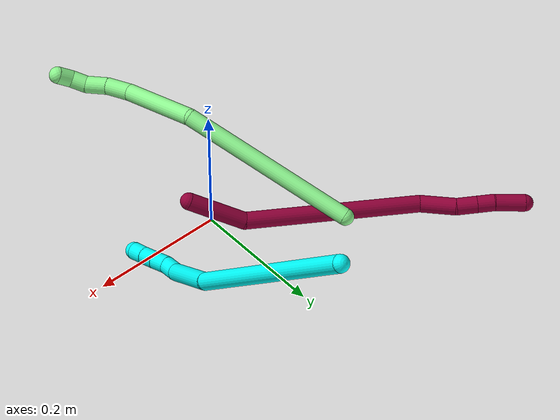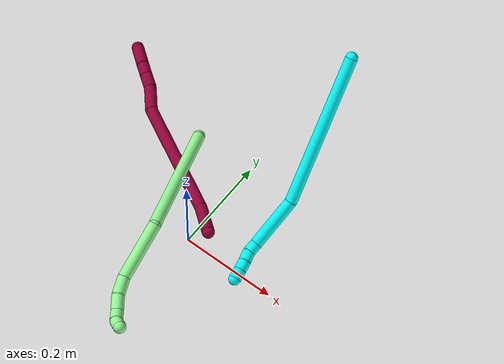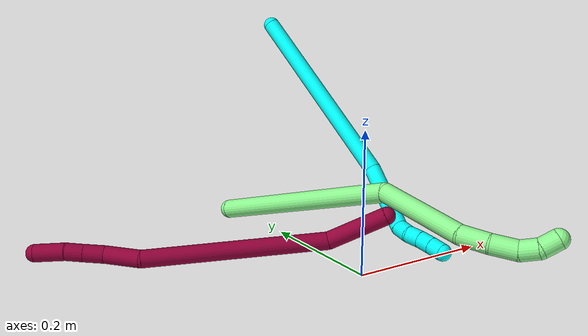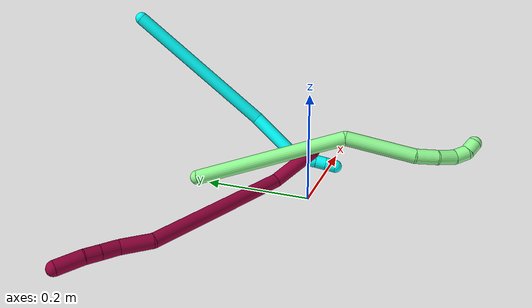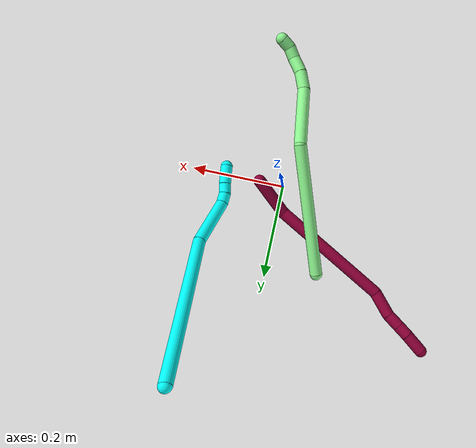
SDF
<sdf version="1.7">
 <world name="default">
  <model name="photoneo_s_sensor">
   <static>1</static>
   <pose>0 0 2 1.57079 1.57079 3.14159</pose>
   <link name="link">
    <inertial><mass>0.1</mass></inertial>
    <sensor name="sensor" type="depth">
     <update_rate>30</update_rate>
     <camera>
      <horizontal_fov>1.22</horizontal_fov>
      <image><width>1920</width><height>1200</height><format>B8G8R8</format></image>
      <clip><near>0.1</near><far>4</far></clip>
      <depth_camera><output>points</output></depth_camera>
     </camera>
     <plugin name="camera_plugin" filename="libgazebo_ros_depth_camera.so">
      <baseline>0.2</baseline>
      <alwaysOn>1</alwaysOn>
      <updateRate>0.0</updateRate>
      <cameraName>camera_ir</cameraName>
      <imageTopicName>/camera/color/image_raw</imageTopicName>
      <cameraInfoTopicName>/camera/color/camera_info</cameraInfoTopicName>
      <depthImageTopicName>/camera/depth/image_raw</depthImageTopicName>
      <depthImageCameraInfoTopicName>/camera/depth/camera_info</depthImageCameraInfoTopicName>
      <pointCloudTopicName>/camera/depth/points</pointCloudTopicName>
      <frameName>fr_optical</frameName>
      <pointCloudCutoff>0.1</pointCloudCutoff>
      <pointCloudCutoffMax>2.0</pointCloudCutoffMax>
      <distortionK1>0</distortionK1>
      <distortionK2>0</distortionK2>
      <distortionK3>0</distortionK3>
      <distortionT1>0</distortionT1>
      <distortionT2>0</distortionT2>
      <CxPrime>0</CxPrime>
      <Cx>0</Cx>
      <Cy>0</Cy>
      <focalLength>0</focalLength>
      <hackBaseline>0</hackBaseline>
     </plugin>
    </sensor>
   </link>
  </model>
  <model name="bin">
   <static>1</static>
   <link name="bottom">
    <collision name="collision-bottom">
     <pose>0 0 -0.01 0 -0 0</pose>
     <geometry><box><size>0.8 0.6 0.02</size></box></geometry>
     <surface>
      <friction><ode><mu>100</mu><mu2>100</mu2></ode></friction>
      <contact><collide_bitmask>65535</collide_bitmask></contact>
     </surface>
    </collision>
   </link>
   <link name="west_wall">
    <collision name="collision-west_wall">
     <pose>-0.41 0 0.1 0 -0 0</pose>
     <geometry><box><size>0.02 0.6 0.2</size></box></geometry>
     <surface>
      <friction><ode><mu>100</mu><mu2>100</mu2></ode></friction>
      <contact><collide_bitmask>65535</collide_bitmask></contact>
     </surface>
    </collision>
   </link>
   <link name="east_wall">
    <collision name="collision-east_wall">
     <pose>0.41 0 0.1 0 -0 0</pose>
     <geometry><box><size>0.02 0.6 0.2</size></box></geometry>
     <surface>
      <friction><ode><mu>100</mu><mu2>100</mu2></ode></friction>
      <contact><collide_bitmask>65535</collide_bitmask></contact>
     </surface>
    </collision>
   </link>
   <link name="south_wall">
    <collision name="collision-south_wall">
     <pose>0 -0.31 0.1 0 -0 0</pose>
     <geometry><box><size>0.8 0.02 0.2</size></box></geometry>
     <surface>
      <friction><ode><mu>100</mu><mu2>100</mu2></ode></friction>
      <contact><collide_bitmask>65535</collide_bitmask></contact>
     </surface>
    </collision>
   </link>
   <link name="north_wall">
    <collision name="collision-north_wall">
     <pose>0 0.31 0.1 0 -0 0</pose>
     <geometry><box><size>0.8 0.02 0.2</size></box></geometry>
     <surface>
      <friction><ode><mu>100</mu><mu2>100</mu2></ode></friction>
      <contact><collide_bitmask>65535</collide_bitmask></contact>
     </surface>
    </collision>
   </link>
  </model>
  <model name="3">
   <static>0</static>
   <link name="3">
    <collision name="collision-cylinder-e_1_1_4">
     <pose>0.005842 -0.005156 -0.153022 3.10791 0.038135 1.69474</pose>
     <geometry><cylinder><radius>0.0125</radius><length>0.306441</length></cylinder></geometry>
     <surface>
      <friction><ode><mu>1.16</mu><mu2>1.16</mu2><slip1>0</slip1><slip2>0</slip2></ode></friction>
      <contact><ode><kp>1e+06</kp><kd>1</kd><max_vel>0</max_vel><min_depth>0.001</min_depth></ode></contact>
     </surface>
    </collision>
    <visual name="visual-cylinder-e_1_1_4">
     <pose>0.005842 -0.005156 -0.153022 3.10791 0.038135 1.69474</pose>
     <geometry><cylinder><radius>0.0125</radius><length>0.306441</length></cylinder></geometry>
     <material><ambient>0.003922 1 0.996078 1</ambient></material>
    </visual>
    <collision name="collision-cylinder-e_2_4_5">
     <pose>-0.00027 -0.018491 -0.358908 2.98808 -0.219838 -1.92439</pose>
     <geometry><cylinder><radius>0.0125</radius><length>0.109623</length></cylinder></geometry>
     <surface>
      <friction><ode><mu>1.16</mu><mu2>1.16</mu2><slip1>0</slip1><slip2>0</slip2></ode></friction>
      <contact><ode><kp>1e+06</kp><kd>1</kd><max_vel>0</max_vel><min_depth>0.001</min_depth></ode></contact>
     </surface>
    </collision>
    <visual name="visual-cylinder-e_2_4_5">
     <pose>-0.00027 -0.018491 -0.358908 2.98808 -0.219838 -1.92439</pose>
     <geometry><cylinder><radius>0.0125</radius><length>0.109623</length></cylinder></geometry>
     <material><ambient>0.003922 1 0.996078 1</ambient></material>
    </visual>
    <collision name="collision-cylinder-e_3_5_6">
     <pose>-0.012301 -0.033067 -0.421066 2.53882 -0.006981 -0.022457</pose>
     <geometry><cylinder><radius>0.0125</radius><length>0.022566</length></cylinder></geometry>
     <surface>
      <friction><ode><mu>1.16</mu><mu2>1.16</mu2><slip1>0</slip1><slip2>0</slip2></ode></friction>
      <contact><ode><kp>1e+06</kp><kd>1</kd><max_vel>0</max_vel><min_depth>0.001</min_depth></ode></contact>
     </surface>
    </collision>
    <visual name="visual-cylinder-e_3_5_6">
     <pose>-0.012301 -0.033067 -0.421066 2.53882 -0.006981 -0.022457</pose>
     <geometry><cylinder><radius>0.0125</radius><length>0.022566</length></cylinder></geometry>
     <material><ambient>0.003922 1 0.996078 1</ambient></material>
    </visual>
    <collision name="collision-cylinder-e_4_6_7">
     <pose>-0.009618 -0.044771 -0.43881 2.58076 0.270042 0.881476</pose>
     <geometry><cylinder><radius>0.0125</radius><length>0.020708</length></cylinder></geometry>
     <surface>
      <friction><ode><mu>1.16</mu><mu2>1.16</mu2><slip1>0</slip1><slip2>0</slip2></ode></friction>
      <contact><ode><kp>1e+06</kp><kd>1</kd><max_vel>0</max_vel><min_depth>0.001</min_depth></ode></contact>
     </surface>
    </collision>
    <visual name="visual-cylinder-e_4_6_7">
     <pose>-0.009618 -0.044771 -0.43881 2.58076 0.270042 0.881476</pose>
     <geometry><cylinder><radius>0.0125</radius><length>0.020708</length></cylinder></geometry>
     <material><ambient>0.003922 1 0.996078 1</ambient></material>
    </visual>
    <collision name="collision-cylinder-e_5_7_8">
     <pose>-0.004945 -0.05504 -0.455928 2.62169 0.189044 0.684815</pose>
     <geometry><cylinder><radius>0.0125</radius><length>0.020337</length></cylinder></geometry>
     <surface>
      <friction><ode><mu>1.16</mu><mu2>1.16</mu2><slip1>0</slip1><slip2>0</slip2></ode></friction>
      <contact><ode><kp>1e+06</kp><kd>1</kd><max_vel>0</max_vel><min_depth>0.001</min_depth></ode></contact>
     </surface>
    </collision>
    <visual name="visual-cylinder-e_5_7_8">
     <pose>-0.004945 -0.05504 -0.455928 2.62169 0.189044 0.684815</pose>
     <geometry><cylinder><radius>0.0125</radius><length>0.020337</length></cylinder></geometry>
     <material><ambient>0.003922 1 0.996078 1</ambient></material>
    </visual>
    <collision name="collision-cylinder-e_6_8_2">
     <pose>-0.001546 -0.065089 -0.473267 2.61105 0.1469 0.529006</pose>
     <geometry><cylinder><radius>0.0125</radius><length>0.020324</length></cylinder></geometry>
     <surface>
      <friction><ode><mu>1.16</mu><mu2>1.16</mu2><slip1>0</slip1><slip2>0</slip2></ode></friction>
      <contact><ode><kp>1e+06</kp><kd>1</kd><max_vel>0</max_vel><min_depth>0.001</min_depth></ode></contact>
     </surface>
    </collision>
    <visual name="visual-cylinder-e_6_8_2">
     <pose>-0.001546 -0.065089 -0.473267 2.61105 0.1469 0.529006</pose>
     <geometry><cylinder><radius>0.0125</radius><length>0.020324</length></cylinder></geometry>
     <material><ambient>0.003922 1 0.996078 1</ambient></material>
    </visual>
    <collision name="collision-sphere-2">
     <pose>-5.9e-05 -0.070175 -0.481938 0 -0 0</pose>
     <geometry><sphere><radius>0.0125</radius></sphere></geometry>
     <surface>
      <friction><ode><mu>1.16</mu><mu2>1.16</mu2><slip1>0</slip1><slip2>0</slip2></ode></friction>
      <contact><ode><kp>1e+06</kp><kd>1</kd><max_vel>0</max_vel><min_depth>0.001</min_depth></ode></contact>
     </surface>
    </collision>
    <visual name="visual-sphere-2">
     <pose>-5.9e-05 -0.070175 -0.481938 0 -0 0</pose>
     <geometry><sphere><radius>0.0125</radius></sphere></geometry>
     <material><ambient>0.003922 1 0.996078 1</ambient></material>
    </visual>
    <collision name="collision-sphere-4">
     <pose>0.011683 -0.010311 -0.306045 0 -0 0</pose>
     <geometry><sphere><radius>0.0125</radius></sphere></geometry>
     <surface>
      <friction><ode><mu>1.16</mu><mu2>1.16</mu2><slip1>0</slip1><slip2>0</slip2></ode></friction>
      <contact><ode><kp>1e+06</kp><kd>1</kd><max_vel>0</max_vel><min_depth>0.001</min_depth></ode></contact>
     </surface>
    </collision>
    <visual name="visual-sphere-4">
     <pose>0.011683 -0.010311 -0.306045 0 -0 0</pose>
     <geometry><sphere><radius>0.0125</radius></sphere></geometry>
     <material><ambient>0.003922 1 0.996078 1</ambient></material>
    </visual>
    <collision name="collision-sphere-1">
     <geometry><sphere><radius>0.0125</radius></sphere></geometry>
     <surface>
      <friction><ode><mu>1.16</mu><mu2>1.16</mu2><slip1>0</slip1><slip2>0</slip2></ode></friction>
      <contact><ode><kp>1e+06</kp><kd>1</kd><max_vel>0</max_vel><min_depth>0.001</min_depth></ode></contact>
     </surface>
    </collision>
    <visual name="visual-sphere-1">
     <geometry><sphere><radius>0.0125</radius></sphere></geometry>
     <material><ambient>0.003922 1 0.996078 1</ambient></material>
    </visual>
    <collision name="collision-sphere-8">
     <pose>-0.003034 -0.060002 -0.464596 0 -0 0</pose>
     <geometry><sphere><radius>0.0125</radius></sphere></geometry>
     <surface>
      <friction><ode><mu>1.16</mu><mu2>1.16</mu2><slip1>0</slip1><slip2>0</slip2></ode></friction>
      <contact><ode><kp>1e+06</kp><kd>1</kd><max_vel>0</max_vel><min_depth>0.001</min_depth></ode></contact>
     </surface>
    </collision>
    <visual name="visual-sphere-8">
     <pose>-0.003034 -0.060002 -0.464596 0 -0 0</pose>
     <geometry><sphere><radius>0.0125</radius></sphere></geometry>
     <material><ambient>0.003922 1 0.996078 1</ambient></material>
    </visual>
    <collision name="collision-sphere-5">
     <pose>-0.012223 -0.02667 -0.411772 0 -0 0</pose>
     <geometry><sphere><radius>0.0125</radius></sphere></geometry>
     <surface>
      <friction><ode><mu>1.16</mu><mu2>1.16</mu2><slip1>0</slip1><slip2>0</slip2></ode></friction>
      <contact><ode><kp>1e+06</kp><kd>1</kd><max_vel>0</max_vel><min_depth>0.001</min_depth></ode></contact>
     </surface>
    </collision>
    <visual name="visual-sphere-5">
     <pose>-0.012223 -0.02667 -0.411772 0 -0 0</pose>
     <geometry><sphere><radius>0.0125</radius></sphere></geometry>
     <material><ambient>0.003922 1 0.996078 1</ambient></material>
    </visual>
    <collision name="collision-sphere-6">
     <pose>-0.01238 -0.039463 -0.43036 0 -0 0</pose>
     <geometry><sphere><radius>0.0125</radius></sphere></geometry>
     <surface>
      <friction><ode><mu>1.16</mu><mu2>1.16</mu2><slip1>0</slip1><slip2>0</slip2></ode></friction>
      <contact><ode><kp>1e+06</kp><kd>1</kd><max_vel>0</max_vel><min_depth>0.001</min_depth></ode></contact>
     </surface>
    </collision>
    <visual name="visual-sphere-6">
     <pose>-0.01238 -0.039463 -0.43036 0 -0 0</pose>
     <geometry><sphere><radius>0.0125</radius></sphere></geometry>
     <material><ambient>0.003922 1 0.996078 1</ambient></material>
    </visual>
    <collision name="collision-sphere-7">
     <pose>-0.006856 -0.050079 -0.447261 0 -0 0</pose>
     <geometry><sphere><radius>0.0125</radius></sphere></geometry>
     <surface>
      <friction><ode><mu>1.16</mu><mu2>1.16</mu2><slip1>0</slip1><slip2>0</slip2></ode></friction>
      <contact><ode><kp>1e+06</kp><kd>1</kd><max_vel>0</max_vel><min_depth>0.001</min_depth></ode></contact>
     </surface>
    </collision>
    <visual name="visual-sphere-7">
     <pose>-0.006856 -0.050079 -0.447261 0 -0 0</pose>
     <geometry><sphere><radius>0.0125</radius></sphere></geometry>
     <material><ambient>0.003922 1 0.996078 1</ambient></material>
    </visual>
    <inertial>
     <pose>0.002304 -0.015445 -0.247434 0 -0 0</pose>
     <mass>0.5</mass>
     <inertia><ixx>0.001957</ixx><ixy>0</ixy><ixz>0</ixz><iyy>0.002622</iyy><iyz>0</iyz><izz>-4e-06</izz></inertia>
    </inertial>
   </link>
   <pose>0.100941 0.384141 0.286449 -0.814203 -0.186144 -0.06001</pose>
  </model>
  <model name="8">
   <static>0</static>
   <link name="8">
    <collision name="collision-cylinder-e_1_1_4">
     <pose>-0.002419 0.002781 0.043756 -0.063469 -0.05512 0.00175</pose>
     <geometry><cylinder><radius>0.0125</radius><length>0.087821</length></cylinder></geometry>
     <surface>
      <friction><ode><mu>1.16</mu><mu2>1.16</mu2><slip1>0</slip1><slip2>0</slip2></ode></friction>
      <contact><ode><kp>1e+06</kp><kd>1</kd><max_vel>0</max_vel><min_depth>0.001</min_depth></ode></contact>
     </surface>
    </collision>
    <visual name="visual-cylinder-e_1_1_4">
     <pose>-0.002419 0.002781 0.043756 -0.063469 -0.05512 0.00175</pose>
     <geometry><cylinder><radius>0.0125</radius><length>0.087821</length></cylinder></geometry>
     <material><ambient>0.584314 0 0.227451 1</ambient></material>
    </visual>
    <collision name="collision-cylinder-e_2_4_5">
     <pose>-0.062694 0.032105 0.200119 -0.231487 -0.463713 0.054886</pose>
     <geometry><cylinder><radius>0.0125</radius><length>0.258707</length></cylinder></geometry>
     <surface>
      <friction><ode><mu>1.16</mu><mu2>1.16</mu2><slip1>0</slip1><slip2>0</slip2></ode></friction>
      <contact><ode><kp>1e+06</kp><kd>1</kd><max_vel>0</max_vel><min_depth>0.001</min_depth></ode></contact>
     </surface>
    </collision>
    <visual name="visual-cylinder-e_2_4_5">
     <pose>-0.062694 0.032105 0.200119 -0.231487 -0.463713 0.054886</pose>
     <geometry><cylinder><radius>0.0125</radius><length>0.258707</length></cylinder></geometry>
     <material><ambient>0.584314 0 0.227451 1</ambient></material>
    </visual>
    <collision name="collision-cylinder-e_3_5_6">
     <pose>-0.133504 0.054626 0.335726 0.173095 -0.506493 -0.044902</pose>
     <geometry><cylinder><radius>0.0125</radius><length>0.053401</length></cylinder></geometry>
     <surface>
      <friction><ode><mu>1.16</mu><mu2>1.16</mu2><slip1>0</slip1><slip2>0</slip2></ode></friction>
      <contact><ode><kp>1e+06</kp><kd>1</kd><max_vel>0</max_vel><min_depth>0.001</min_depth></ode></contact>
     </surface>
    </collision>
    <visual name="visual-cylinder-e_3_5_6">
     <pose>-0.133504 0.054626 0.335726 0.173095 -0.506493 -0.044902</pose>
     <geometry><cylinder><radius>0.0125</radius><length>0.053401</length></cylinder></geometry>
     <material><ambient>0.584314 0 0.227451 1</ambient></material>
    </visual>
    <collision name="collision-cylinder-e_4_6_7">
     <pose>-0.154819 0.051729 0.37128 -0.089318 -0.585751 0.02695</pose>
     <geometry><cylinder><radius>0.0125</radius><length>0.030252</length></cylinder></geometry>
     <surface>
      <friction><ode><mu>1.16</mu><mu2>1.16</mu2><slip1>0</slip1><slip2>0</slip2></ode></friction>
      <contact><ode><kp>1e+06</kp><kd>1</kd><max_vel>0</max_vel><min_depth>0.001</min_depth></ode></contact>
     </surface>
    </collision>
    <visual name="visual-cylinder-e_4_6_7">
     <pose>-0.154819 0.051729 0.37128 -0.089318 -0.585751 0.02695</pose>
     <geometry><cylinder><radius>0.0125</radius><length>0.030252</length></cylinder></geometry>
     <material><ambient>0.584314 0 0.227451 1</ambient></material>
    </visual>
    <collision name="collision-cylinder-e_5_7_8">
     <pose>-0.170316 0.053703 0.394394 -0.080226 -0.592768 0.024511</pose>
     <geometry><cylinder><radius>0.0125</radius><length>0.025545</length></cylinder></geometry>
     <surface>
      <friction><ode><mu>1.16</mu><mu2>1.16</mu2><slip1>0</slip1><slip2>0</slip2></ode></friction>
      <contact><ode><kp>1e+06</kp><kd>1</kd><max_vel>0</max_vel><min_depth>0.001</min_depth></ode></contact>
     </surface>
    </collision>
    <visual name="visual-cylinder-e_5_7_8">
     <pose>-0.170316 0.053703 0.394394 -0.080226 -0.592768 0.024511</pose>
     <geometry><cylinder><radius>0.0125</radius><length>0.025545</length></cylinder></geometry>
     <material><ambient>0.584314 0 0.227451 1</ambient></material>
    </visual>
    <collision name="collision-cylinder-e_6_8_2">
     <pose>-0.187031 0.055845 0.424868 -0.064869 -0.447515 0.014767</pose>
     <geometry><cylinder><radius>0.0125</radius><length>0.044273</length></cylinder></geometry>
     <surface>
      <friction><ode><mu>1.16</mu><mu2>1.16</mu2><slip1>0</slip1><slip2>0</slip2></ode></friction>
      <contact><ode><kp>1e+06</kp><kd>1</kd><max_vel>0</max_vel><min_depth>0.001</min_depth></ode></contact>
     </surface>
    </collision>
    <visual name="visual-cylinder-e_6_8_2">
     <pose>-0.187031 0.055845 0.424868 -0.064869 -0.447515 0.014767</pose>
     <geometry><cylinder><radius>0.0125</radius><length>0.044273</length></cylinder></geometry>
     <material><ambient>0.584314 0 0.227451 1</ambient></material>
    </visual>
    <collision name="collision-sphere-2">
     <pose>-0.19661 0.057139 0.444782 0 -0 0</pose>
     <geometry><sphere><radius>0.0125</radius></sphere></geometry>
     <surface>
      <friction><ode><mu>1.16</mu><mu2>1.16</mu2><slip1>0</slip1><slip2>0</slip2></ode></friction>
      <contact><ode><kp>1e+06</kp><kd>1</kd><max_vel>0</max_vel><min_depth>0.001</min_depth></ode></contact>
     </surface>
    </collision>
    <visual name="visual-sphere-2">
     <pose>-0.19661 0.057139 0.444782 0 -0 0</pose>
     <geometry><sphere><radius>0.0125</radius></sphere></geometry>
     <material><ambient>0.584314 0 0.227451 1</ambient></material>
    </visual>
    <collision name="collision-sphere-4">
     <pose>-0.004838 0.005562 0.087511 0 -0 0</pose>
     <geometry><sphere><radius>0.0125</radius></sphere></geometry>
     <surface>
      <friction><ode><mu>1.16</mu><mu2>1.16</mu2><slip1>0</slip1><slip2>0</slip2></ode></friction>
      <contact><ode><kp>1e+06</kp><kd>1</kd><max_vel>0</max_vel><min_depth>0.001</min_depth></ode></contact>
     </surface>
    </collision>
    <visual name="visual-sphere-4">
     <pose>-0.004838 0.005562 0.087511 0 -0 0</pose>
     <geometry><sphere><radius>0.0125</radius></sphere></geometry>
     <material><ambient>0.584314 0 0.227451 1</ambient></material>
    </visual>
    <collision name="collision-sphere-1">
     <geometry><sphere><radius>0.0125</radius></sphere></geometry>
     <surface>
      <friction><ode><mu>1.16</mu><mu2>1.16</mu2><slip1>0</slip1><slip2>0</slip2></ode></friction>
      <contact><ode><kp>1e+06</kp><kd>1</kd><max_vel>0</max_vel><min_depth>0.001</min_depth></ode></contact>
     </surface>
    </collision>
    <visual name="visual-sphere-1">
     <geometry><sphere><radius>0.0125</radius></sphere></geometry>
     <material><ambient>0.584314 0 0.227451 1</ambient></material>
    </visual>
    <collision name="collision-sphere-8">
     <pose>-0.177452 0.054552 0.404953 0 -0 0</pose>
     <geometry><sphere><radius>0.0125</radius></sphere></geometry>
     <surface>
      <friction><ode><mu>1.16</mu><mu2>1.16</mu2><slip1>0</slip1><slip2>0</slip2></ode></friction>
      <contact><ode><kp>1e+06</kp><kd>1</kd><max_vel>0</max_vel><min_depth>0.001</min_depth></ode></contact>
     </surface>
    </collision>
    <visual name="visual-sphere-8">
     <pose>-0.177452 0.054552 0.404953 0 -0 0</pose>
     <geometry><sphere><radius>0.0125</radius></sphere></geometry>
     <material><ambient>0.584314 0 0.227451 1</ambient></material>
    </visual>
    <collision name="collision-sphere-5">
     <pose>-0.120551 0.058648 0.312726 0 -0 0</pose>
     <geometry><sphere><radius>0.0125</radius></sphere></geometry>
     <surface>
      <friction><ode><mu>1.16</mu><mu2>1.16</mu2><slip1>0</slip1><slip2>0</slip2></ode></friction>
      <contact><ode><kp>1e+06</kp><kd>1</kd><max_vel>0</max_vel><min_depth>0.001</min_depth></ode></contact>
     </surface>
    </collision>
    <visual name="visual-sphere-5">
     <pose>-0.120551 0.058648 0.312726 0 -0 0</pose>
     <geometry><sphere><radius>0.0125</radius></sphere></geometry>
     <material><ambient>0.584314 0 0.227451 1</ambient></material>
    </visual>
    <collision name="collision-sphere-6">
     <pose>-0.146456 0.050605 0.358725 0 -0 0</pose>
     <geometry><sphere><radius>0.0125</radius></sphere></geometry>
     <surface>
      <friction><ode><mu>1.16</mu><mu2>1.16</mu2><slip1>0</slip1><slip2>0</slip2></ode></friction>
      <contact><ode><kp>1e+06</kp><kd>1</kd><max_vel>0</max_vel><min_depth>0.001</min_depth></ode></contact>
     </surface>
    </collision>
    <visual name="visual-sphere-6">
     <pose>-0.146456 0.050605 0.358725 0 -0 0</pose>
     <geometry><sphere><radius>0.0125</radius></sphere></geometry>
     <material><ambient>0.584314 0 0.227451 1</ambient></material>
    </visual>
    <collision name="collision-sphere-7">
     <pose>-0.163181 0.052854 0.383834 0 -0 0</pose>
     <geometry><sphere><radius>0.0125</radius></sphere></geometry>
     <surface>
      <friction><ode><mu>1.16</mu><mu2>1.16</mu2><slip1>0</slip1><slip2>0</slip2></ode></friction>
      <contact><ode><kp>1e+06</kp><kd>1</kd><max_vel>0</max_vel><min_depth>0.001</min_depth></ode></contact>
     </surface>
    </collision>
    <visual name="visual-sphere-7">
     <pose>-0.163181 0.052854 0.383834 0 -0 0</pose>
     <geometry><sphere><radius>0.0125</radius></sphere></geometry>
     <material><ambient>0.584314 0 0.227451 1</ambient></material>
    </visual>
    <inertial>
     <pose>-0.081752 0.033753 0.22732 0 -0 0</pose>
     <mass>0.5</mass>
     <inertia>
      <ixx>0.001439</ixx>
      <ixy>0</ixy>
      <ixz>0</ixz>
      <iyy>0.001585</iyy>
      <iyz>0</iyz>
      <izz>0.000402</izz>
     </inertia>
    </inertial>
   </link>
   <pose>0.045393 0.006823 0.073626 -2.81784 1.02314 -0.421249</pose>
  </model>
  <model name="13">
   <static>0</static>
   <link name="13">
    <collision name="collision-cylinder-e_1_1_4">
     <pose>0.083514 -0.078471 -0.065802 2.26861 0.684118 1.30385</pose>
     <geometry><cylinder><radius>0.0125</radius><length>0.26429</length></cylinder></geometry>
     <surface>
      <friction><ode><mu>1.16</mu><mu2>1.16</mu2><slip1>0</slip1><slip2>0</slip2></ode></friction>
      <contact><ode><kp>1e+06</kp><kd>1</kd><max_vel>0</max_vel><min_depth>0.001</min_depth></ode></contact>
     </surface>
    </collision>
    <visual name="visual-cylinder-e_1_1_4">
     <pose>0.083514 -0.078471 -0.065802 2.26861 0.684118 1.30385</pose>
     <geometry><cylinder><radius>0.0125</radius><length>0.26429</length></cylinder></geometry>
     <material><ambient>0.564706 0.984314 0.572549 1</ambient></material>
    </visual>
    <collision name="collision-cylinder-e_2_4_5">
     <pose>0.177303 -0.202492 -0.168934 2.25732 0.172719 0.361764</pose>
     <geometry><cylinder><radius>0.0125</radius><length>0.119562</length></cylinder></geometry>
     <surface>
      <friction><ode><mu>1.16</mu><mu2>1.16</mu2><slip1>0</slip1><slip2>0</slip2></ode></friction>
      <contact><ode><kp>1e+06</kp><kd>1</kd><max_vel>0</max_vel><min_depth>0.001</min_depth></ode></contact>
     </surface>
    </collision>
    <visual name="visual-cylinder-e_2_4_5">
     <pose>0.177303 -0.202492 -0.168934 2.25732 0.172719 0.361764</pose>
     <geometry><cylinder><radius>0.0125</radius><length>0.119562</length></cylinder></geometry>
     <material><ambient>0.564706 0.984314 0.572549 1</ambient></material>
    </visual>
    <collision name="collision-cylinder-e_3_5_6">
     <pose>0.193988 -0.259198 -0.219774 2.45144 0.350775 0.916035</pose>
     <geometry><cylinder><radius>0.0125</radius><length>0.037317</length></cylinder></geometry>
     <surface>
      <friction><ode><mu>1.16</mu><mu2>1.16</mu2><slip1>0</slip1><slip2>0</slip2></ode></friction>
      <contact><ode><kp>1e+06</kp><kd>1</kd><max_vel>0</max_vel><min_depth>0.001</min_depth></ode></contact>
     </surface>
    </collision>
    <visual name="visual-cylinder-e_3_5_6">
     <pose>0.193988 -0.259198 -0.219774 2.45144 0.350775 0.916035</pose>
     <geometry><cylinder><radius>0.0125</radius><length>0.037317</length></cylinder></geometry>
     <material><ambient>0.564706 0.984314 0.572549 1</ambient></material>
    </visual>
    <collision name="collision-cylinder-e_4_6_7">
     <pose>0.206417 -0.276721 -0.247142 2.71081 0.375831 1.43102</pose>
     <geometry><cylinder><radius>0.0125</radius><length>0.032786</length></cylinder></geometry>
     <surface>
      <friction><ode><mu>1.16</mu><mu2>1.16</mu2><slip1>0</slip1><slip2>0</slip2></ode></friction>
      <contact><ode><kp>1e+06</kp><kd>1</kd><max_vel>0</max_vel><min_depth>0.001</min_depth></ode></contact>
     </surface>
    </collision>
    <visual name="visual-cylinder-e_4_6_7">
     <pose>0.206417 -0.276721 -0.247142 2.71081 0.375831 1.43102</pose>
     <geometry><cylinder><radius>0.0125</radius><length>0.032786</length></cylinder></geometry>
     <material><ambient>0.564706 0.984314 0.572549 1</ambient></material>
    </visual>
    <collision name="collision-cylinder-e_5_7_8">
     <pose>0.220389 -0.287569 -0.268583 2.60814 0.734501 1.90645</pose>
     <geometry><cylinder><radius>0.0125</radius><length>0.023739</length></cylinder></geometry>
     <surface>
      <friction><ode><mu>1.16</mu><mu2>1.16</mu2><slip1>0</slip1><slip2>0</slip2></ode></friction>
      <contact><ode><kp>1e+06</kp><kd>1</kd><max_vel>0</max_vel><min_depth>0.001</min_depth></ode></contact>
     </surface>
    </collision>
    <visual name="visual-cylinder-e_5_7_8">
     <pose>0.220389 -0.287569 -0.268583 2.60814 0.734501 1.90645</pose>
     <geometry><cylinder><radius>0.0125</radius><length>0.023739</length></cylinder></geometry>
     <material><ambient>0.564706 0.984314 0.572549 1</ambient></material>
    </visual>
    <collision name="collision-cylinder-e_6_8_2">
     <pose>0.237764 -0.291485 -0.282113 -3.04707 1.00579 -2.97006</pose>
     <geometry><cylinder><radius>0.0125</radius><length>0.022306</length></cylinder></geometry>
     <surface>
      <friction><ode><mu>1.16</mu><mu2>1.16</mu2><slip1>0</slip1><slip2>0</slip2></ode></friction>
      <contact><ode><kp>1e+06</kp><kd>1</kd><max_vel>0</max_vel><min_depth>0.001</min_depth></ode></contact>
     </surface>
    </collision>
    <visual name="visual-cylinder-e_6_8_2">
     <pose>0.237764 -0.291485 -0.282113 -3.04707 1.00579 -2.97006</pose>
     <geometry><cylinder><radius>0.0125</radius><length>0.022306</length></cylinder></geometry>
     <material><ambient>0.564706 0.984314 0.572549 1</ambient></material>
    </visual>
    <collision name="collision-sphere-2">
     <pose>0.247183 -0.290921 -0.288058 0 -0 0</pose>
     <geometry><sphere><radius>0.0125</radius></sphere></geometry>
     <surface>
      <friction><ode><mu>1.16</mu><mu2>1.16</mu2><slip1>0</slip1><slip2>0</slip2></ode></friction>
      <contact><ode><kp>1e+06</kp><kd>1</kd><max_vel>0</max_vel><min_depth>0.001</min_depth></ode></contact>
     </surface>
    </collision>
    <visual name="visual-sphere-2">
     <pose>0.247183 -0.290921 -0.288058 0 -0 0</pose>
     <geometry><sphere><radius>0.0125</radius></sphere></geometry>
     <material><ambient>0.564706 0.984314 0.572549 1</ambient></material>
    </visual>
    <collision name="collision-sphere-4">
     <pose>0.167029 -0.156942 -0.131605 0 -0 0</pose>
     <geometry><sphere><radius>0.0125</radius></sphere></geometry>
     <surface>
      <friction><ode><mu>1.16</mu><mu2>1.16</mu2><slip1>0</slip1><slip2>0</slip2></ode></friction>
      <contact><ode><kp>1e+06</kp><kd>1</kd><max_vel>0</max_vel><min_depth>0.001</min_depth></ode></contact>
     </surface>
    </collision>
    <visual name="visual-sphere-4">
     <pose>0.167029 -0.156942 -0.131605 0 -0 0</pose>
     <geometry><sphere><radius>0.0125</radius></sphere></geometry>
     <material><ambient>0.564706 0.984314 0.572549 1</ambient></material>
    </visual>
    <collision name="collision-sphere-1">
     <geometry><sphere><radius>0.0125</radius></sphere></geometry>
     <surface>
      <friction><ode><mu>1.16</mu><mu2>1.16</mu2><slip1>0</slip1><slip2>0</slip2></ode></friction>
      <contact><ode><kp>1e+06</kp><kd>1</kd><max_vel>0</max_vel><min_depth>0.001</min_depth></ode></contact>
     </surface>
    </collision>
    <visual name="visual-sphere-1">
     <geometry><sphere><radius>0.0125</radius></sphere></geometry>
     <material><ambient>0.564706 0.984314 0.572549 1</ambient></material>
    </visual>
    <collision name="collision-sphere-8">
     <pose>0.228344 -0.292048 -0.276168 0 -0 0</pose>
     <geometry><sphere><radius>0.0125</radius></sphere></geometry>
     <surface>
      <friction><ode><mu>1.16</mu><mu2>1.16</mu2><slip1>0</slip1><slip2>0</slip2></ode></friction>
      <contact><ode><kp>1e+06</kp><kd>1</kd><max_vel>0</max_vel><min_depth>0.001</min_depth></ode></contact>
     </surface>
    </collision>
    <visual name="visual-sphere-8">
     <pose>0.228344 -0.292048 -0.276168 0 -0 0</pose>
     <geometry><sphere><radius>0.0125</radius></sphere></geometry>
     <material><ambient>0.564706 0.984314 0.572549 1</ambient></material>
    </visual>
    <collision name="collision-sphere-5">
     <pose>0.187577 -0.248043 -0.206262 0 -0 0</pose>
     <geometry><sphere><radius>0.0125</radius></sphere></geometry>
     <surface>
      <friction><ode><mu>1.16</mu><mu2>1.16</mu2><slip1>0</slip1><slip2>0</slip2></ode></friction>
      <contact><ode><kp>1e+06</kp><kd>1</kd><max_vel>0</max_vel><min_depth>0.001</min_depth></ode></contact>
     </surface>
    </collision>
    <visual name="visual-sphere-5">
     <pose>0.187577 -0.248043 -0.206262 0 -0 0</pose>
     <geometry><sphere><radius>0.0125</radius></sphere></geometry>
     <material><ambient>0.564706 0.984314 0.572549 1</ambient></material>
    </visual>
    <collision name="collision-sphere-6">
     <pose>0.2004 -0.270354 -0.233287 0 -0 0</pose>
     <geometry><sphere><radius>0.0125</radius></sphere></geometry>
     <surface>
      <friction><ode><mu>1.16</mu><mu2>1.16</mu2><slip1>0</slip1><slip2>0</slip2></ode></friction>
      <contact><ode><kp>1e+06</kp><kd>1</kd><max_vel>0</max_vel><min_depth>0.001</min_depth></ode></contact>
     </surface>
    </collision>
    <visual name="visual-sphere-6">
     <pose>0.2004 -0.270354 -0.233287 0 -0 0</pose>
     <geometry><sphere><radius>0.0125</radius></sphere></geometry>
     <material><ambient>0.564706 0.984314 0.572549 1</ambient></material>
    </visual>
    <collision name="collision-sphere-7">
     <pose>0.212434 -0.283089 -0.260998 0 -0 0</pose>
     <geometry><sphere><radius>0.0125</radius></sphere></geometry>
     <surface>
      <friction><ode><mu>1.16</mu><mu2>1.16</mu2><slip1>0</slip1><slip2>0</slip2></ode></friction>
      <contact><ode><kp>1e+06</kp><kd>1</kd><max_vel>0</max_vel><min_depth>0.001</min_depth></ode></contact>
     </surface>
    </collision>
    <visual name="visual-sphere-7">
     <pose>0.212434 -0.283089 -0.260998 0 -0 0</pose>
     <geometry><sphere><radius>0.0125</radius></sphere></geometry>
     <material><ambient>0.564706 0.984314 0.572549 1</ambient></material>
    </visual>
    <inertial>
     <pose>0.135625 -0.154046 -0.133123 0 -0 0</pose>
     <mass>0.5</mass>
     <inertia><ixx>0.001692</ixx><ixy>0</ixy><ixz>0</ixz><iyy>0.001578</iyy><iyz>0</iyz><izz>5e-06</izz></inertia>
    </inertial>
   </link>
   <pose>-0.106196 0.168997 0.065052 0.104445 -1.06224 -0.641467</pose>
  </model>
 </world>
</sdf>
